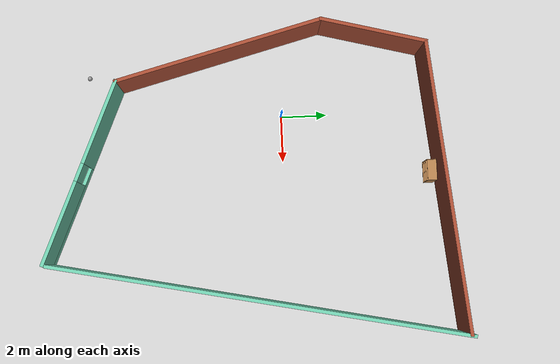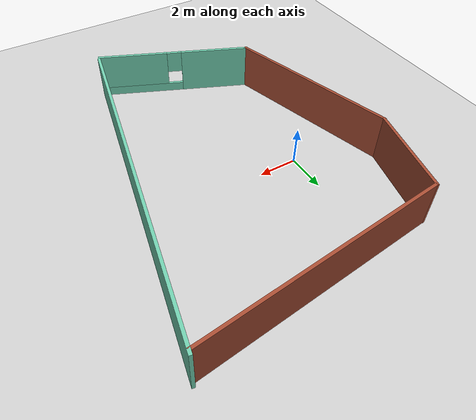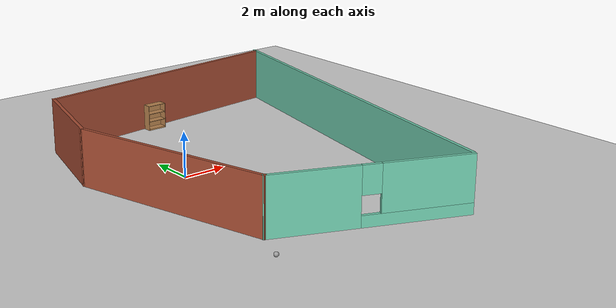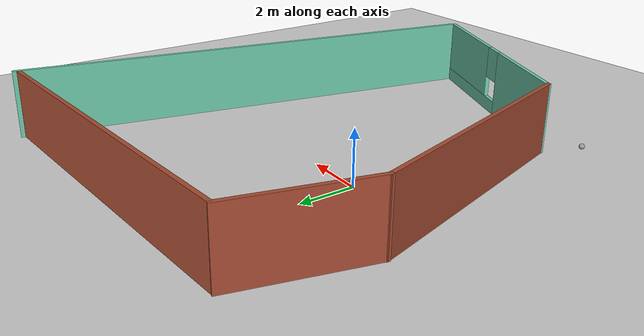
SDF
<sdf version="1.6">
 <world name="default">
  <plugin name="hello" filename="libhello.so"/>
  <light name="sun" type="directional">
   <pose>0 0 10 0 -0 0</pose>
   <diffuse>0.8 0.8 0.8 1</diffuse>
   <specular>0.2 0.2 0.2 1</specular>
   <attenuation>
    <range>1000</range>
    <constant>0.9</constant>
    <linear>0.01</linear>
    <quadratic>0.001</quadratic>
   </attenuation>
   <direction>-0.5 0.1 -0.9</direction>
  </light>
  <model name="ground_plane">
   <static>1</static>
   <link name="link">
    <collision name="collision">
     <geometry><plane><normal>0 0 1</normal><size>100 100</size></plane></geometry>
     <surface><friction><ode><mu>100</mu><mu2>50</mu2></ode></friction></surface>
    </collision>
    <visual name="visual">
     <cast_shadows>0</cast_shadows>
     <geometry><plane><normal>0 0 1</normal><size>100 100</size></plane></geometry>
     <material>
      <script><uri>file://media/materials/scripts/gazebo.material</uri><name>Gazebo/Grey</name></script>
     </material>
    </visual>
   </link>
  </model>
  <gravity>0 0 -9.8</gravity>
  <magnetic_field>6e-06 2.3e-05 -4.2e-05</magnetic_field>
  <atmosphere type="adiabatic"/>
  <physics name="default_physics" default="0" type="ode">
   <max_step_size>0.001</max_step_size>
   <real_time_factor>1</real_time_factor>
   <real_time_update_rate>1000</real_time_update_rate>
  </physics>
  <scene><ambient>0.4 0.4 0.4 1</ambient><background>0.7 0.7 0.7 1</background><shadows>1</shadows></scene>
  <spherical_coordinates>
   <surface_model>EARTH_WGS84</surface_model>
   <latitude_deg>0</latitude_deg>
   <longitude_deg>0</longitude_deg>
   <elevation>0</elevation>
   <heading_deg>0</heading_deg>
  </spherical_coordinates>
  <model name="building">
   <pose>3.01479 -1.33377 0 0 -0 0</pose>
   <link name="Wall_0">
    <collision name="Wall_0_Collision">
     <geometry><box><size>4.68634 0.15 2.5</size></box></geometry>
     <pose>0 0 1.25 0 -0 0</pose>
    </collision>
    <visual name="Wall_0_Visual">
     <pose>0 0 1.25 0 -0 0</pose>
     <geometry><box><size>4.68634 0.15 2.5</size></box></geometry>
     <material>
      <script><uri>file://media/materials/scripts/gazebo.material</uri><name>Gazebo/Bricks</name></script>
      <ambient>1 1 1 1</ambient>
     </material>
     <meta><layer>0</layer></meta>
    </visual>
    <pose>-6.21543 5.31738 0 0 0 -1.82044</pose>
   </link>
   <link name="Wall_1">
    <collision name="Wall_1_Collision">
     <geometry><box><size>9.25 0.15 2.5</size></box></geometry>
     <pose>0 0 1.25 0 -0 0</pose>
    </collision>
    <visual name="Wall_1_Visual">
     <pose>0 0 1.25 0 -0 0</pose>
     <geometry><box><size>9.25 0.15 2.5</size></box></geometry>
     <material>
      <script><uri>file://media/materials/scripts/gazebo.material</uri><name>Gazebo/Bricks</name></script>
      <ambient>1 1 1 1</ambient>
     </material>
     <meta><layer>0</layer></meta>
    </visual>
    <pose>-5.59818 -1.27544 0 0 0 -1.309</pose>
   </link>
   <link name="Wall_2">
    <pose>-0.620057 -7.27949 0 0 0 -0.400505</pose>
    <visual name="Wall_2_Visual_0">
     <pose>-2.3054 0 1.25 0 -0 0</pose>
     <geometry><box><size>3.7934 0.15 2.5</size></box></geometry>
     <material>
      <script><uri>file://media/materials/scripts/gazebo.material</uri><name>Gazebo/Grey</name></script>
      <ambient>0.435294 0.796078 0.67451 1</ambient>
     </material>
     <meta><layer>0</layer></meta>
    </visual>
    <collision name="Wall_2_Collision_0">
     <geometry><box><size>3.7934 0.15 2.5</size></box></geometry>
     <pose>-2.3054 0 1.25 0 -0 0</pose>
    </collision>
    <visual name="Wall_2_Visual_1">
     <pose>1.8967 0 0.25 0 -0 0</pose>
     <geometry><box><size>4.6108 0.15 0.5</size></box></geometry>
     <material>
      <script><uri>file://media/materials/scripts/gazebo.material</uri><name>Gazebo/Grey</name></script>
      <ambient>0.435294 0.796078 0.67451 1</ambient>
     </material>
     <meta><layer>0</layer></meta>
    </visual>
    <collision name="Wall_2_Collision_1">
     <geometry><box><size>4.6108 0.15 0.5</size></box></geometry>
     <pose>1.8967 0 0.25 0 -0 0</pose>
    </collision>
    <visual name="Wall_2_Visual_2">
     <pose>2.2967 0 1.5 0 -0 0</pose>
     <geometry><box><size>3.8108 0.15 2</size></box></geometry>
     <material>
      <script><uri>file://media/materials/scripts/gazebo.material</uri><name>Gazebo/Grey</name></script>
      <ambient>0.435294 0.796078 0.67451 1</ambient>
     </material>
     <meta><layer>0</layer></meta>
    </visual>
    <collision name="Wall_2_Collision_2">
     <geometry><box><size>3.8108 0.15 2</size></box></geometry>
     <pose>2.2967 0 1.5 0 -0 0</pose>
    </collision>
    <visual name="Wall_2_Visual_3">
     <pose>-0.008699 0 1.9 0 -0 0</pose>
     <geometry><box><size>0.8 0.15 1.2</size></box></geometry>
     <material>
      <script><uri>file://media/materials/scripts/gazebo.material</uri><name>Gazebo/Grey</name></script>
      <ambient>0.435294 0.796078 0.67451 1</ambient>
     </material>
     <meta><layer>0</layer></meta>
    </visual>
    <collision name="Wall_2_Collision_3">
     <geometry><box><size>0.8 0.15 1.2</size></box></geometry>
     <pose>-0.008699 0 1.9 0 -0 0</pose>
    </collision>
   </link>
   <link name="Wall_3">
    <collision name="Wall_3_Collision">
     <geometry><box><size>18.1467 0.15 2.5</size></box></geometry>
     <pose>0 0 1.25 0 -0 0</pose>
    </collision>
    <visual name="Wall_3_Visual">
     <pose>0 0 1.25 0 -0 0</pose>
     <geometry><box><size>18.1467 0.15 2.5</size></box></geometry>
     <material>
      <script><uri>file://media/materials/scripts/gazebo.material</uri><name>Gazebo/Grey</name></script>
      <ambient>0.435294 0.796078 0.67451 1</ambient>
     </material>
     <meta><layer>0</layer></meta>
    </visual>
    <pose>5.01491 0.074988 0 0 -0 1.37342</pose>
   </link>
   <link name="Wall_4">
    <collision name="Wall_4_Collision">
     <geometry><box><size>12.4968 0.15 2.5</size></box></geometry>
     <pose>0 0 1.25 0 -0 0</pose>
    </collision>
    <visual name="Wall_4_Visual">
     <pose>0 0 1.25 0 -0 0</pose>
     <geometry><box><size>12.4968 0.15 2.5</size></box></geometry>
     <material>
      <script><uri>file://media/materials/scripts/gazebo.material</uri><name>Gazebo/Bricks</name></script>
      <ambient>1 1 1 1</ambient>
     </material>
     <meta><layer>0</layer></meta>
    </visual>
    <pose>0.567424 8.13697 0 0 0 -3.04071</pose>
   </link>
   <static>1</static>
  </model>
  <model name="bookshelf">
   <static>1</static>
   <link name="link">
    <inertial><mass>1</mass></inertial>
    <collision name="back">
     <pose>0 0.005 0.6 0 -0 0</pose>
     <geometry><box><size>0.9 0.01 1.2</size></box></geometry>
    </collision>
    <visual name="visual1">
     <pose>0 0.005 0.6 0 -0 0</pose>
     <geometry><box><size>0.9 0.01 1.2</size></box></geometry>
     <material>
      <script><uri>file://media/materials/scripts/gazebo.material</uri><name>Gazebo/Wood</name></script>
     </material>
    </visual>
    <collision name="left_side">
     <pose>0.45 -0.195 0.6 0 -0 0</pose>
     <geometry><box><size>0.02 0.4 1.2</size></box></geometry>
    </collision>
    <visual name="visual2">
     <pose>0.45 -0.195 0.6 0 -0 0</pose>
     <geometry><box><size>0.02 0.4 1.2</size></box></geometry>
     <material>
      <script><uri>file://media/materials/scripts/gazebo.material</uri><name>Gazebo/Wood</name></script>
     </material>
    </visual>
    <collision name="right_side">
     <pose>-0.45 -0.195 0.6 0 -0 0</pose>
     <geometry><box><size>0.02 0.4 1.2</size></box></geometry>
    </collision>
    <visual name="visual3">
     <pose>-0.45 -0.195 0.6 0 -0 0</pose>
     <geometry><box><size>0.02 0.4 1.2</size></box></geometry>
     <material>
      <script><uri>file://media/materials/scripts/gazebo.material</uri><name>Gazebo/Wood</name></script>
     </material>
    </visual>
    <collision name="bottom">
     <pose>0 -0.195 0.03 0 -0 0</pose>
     <geometry><box><size>0.88 0.4 0.06</size></box></geometry>
    </collision>
    <visual name="visual4">
     <pose>0 -0.195 0.03 0 -0 0</pose>
     <geometry><box><size>0.88 0.4 0.06</size></box></geometry>
     <material>
      <script><uri>file://media/materials/scripts/gazebo.material</uri><name>Gazebo/Wood</name></script>
     </material>
    </visual>
    <collision name="top">
     <pose>0 -0.195 1.19 0 -0 0</pose>
     <geometry><box><size>0.88 0.4 0.02</size></box></geometry>
    </collision>
    <visual name="visual5">
     <pose>0 -0.195 1.19 0 -0 0</pose>
     <geometry><box><size>0.88 0.4 0.02</size></box></geometry>
     <material>
      <script><uri>file://media/materials/scripts/gazebo.material</uri><name>Gazebo/Wood</name></script>
     </material>
    </visual>
    <collision name="low_shelf">
     <pose>0 -0.195 0.43 0 -0 0</pose>
     <geometry><box><size>0.88 0.4 0.02</size></box></geometry>
    </collision>
    <visual name="visual6">
     <pose>0 -0.195 0.43 0 -0 0</pose>
     <geometry><box><size>0.88 0.4 0.02</size></box></geometry>
     <material>
      <script><uri>file://media/materials/scripts/gazebo.material</uri><name>Gazebo/Wood</name></script>
     </material>
    </visual>
    <collision name="high_shelf">
     <pose>0 -0.195 0.8 0 -0 0</pose>
     <geometry><box><size>0.88 0.4 0.02</size></box></geometry>
    </collision>
    <visual name="visual7">
     <pose>0 -0.195 0.8 0 -0 0</pose>
     <geometry><box><size>0.88 0.4 0.02</size></box></geometry>
     <material>
      <script><uri>file://media/materials/scripts/gazebo.material</uri><name>Gazebo/Wood</name></script>
     </material>
    </visual>
   </link>
   <pose>2.71764 6.57876 0 0 -0 0</pose>
  </model>
  <model name="my_ball">
   <link name="link_0">
    <inertial>
     <mass>1</mass>
     <inertia><ixx>0.1</ixx><ixy>0</ixy><ixz>0</ixz><iyy>0.1</iyy><iyz>0</iyz><izz>0.1</izz></inertia>
    </inertial>
    <visual name="visual">
     <geometry><sphere><radius>0.1</radius></sphere></geometry>
     <material>
      <lighting>1</lighting>
      <script><uri>file://media/materials/scripts/gazebo.material</uri><name>Gazebo/Grey</name></script>
      <ambient>1 1 1 1</ambient>
      <diffuse>1 1 1 1</diffuse>
      <specular>1 1 1 1</specular>
      <emissive>1 1 1 1</emissive>
      <shader type="vertex"><normal_map>__default__</normal_map></shader>
     </material>
    </visual>
    <collision name="collision">
     <geometry><sphere><radius>0.1</radius></sphere></geometry>
     <surface>
      <friction>
       <ode><mu>1</mu><mu2>1</mu2><fdir1>0 0 0</fdir1><slip1>0</slip1><slip2>0</slip2></ode>
       <torsional>
        <coefficient>1</coefficient>
        <patch_radius>0</patch_radius>
        <surface_radius>0</surface_radius>
        <use_patch_radius>1</use_patch_radius>
        <ode><slip>0</slip></ode>
       </torsional>
      </friction>
      <bounce><restitution_coefficient>0</restitution_coefficient><threshold>1e+06</threshold></bounce>
      <contact>
       <collide_without_contact>0</collide_without_contact>
       <collide_without_contact_bitmask>1</collide_without_contact_bitmask>
       <collide_bitmask>1</collide_bitmask>
       <ode>
        <soft_cfm>0</soft_cfm>
        <soft_erp>0.2</soft_erp>
        <kp>1e+13</kp>
        <kd>1</kd>
        <max_vel>0.01</max_vel>
        <min_depth>0</min_depth>
       </ode>
       <bullet>
        <split_impulse>1</split_impulse>
        <split_impulse_penetration_threshold>-0.01</split_impulse_penetration_threshold>
        <soft_cfm>0</soft_cfm>
        <soft_erp>0.2</soft_erp>
        <kp>1e+13</kp>
        <kd>1</kd>
       </bullet>
      </contact>
     </surface>
    </collision>
   </link>
   <static>0</static>
   <pose>-2.03775 -8.44748 0.1 0 -0 0</pose>
  </model>
  <plugin filename="libcollision_map_creator.so" name="collision_map_creator"/>
 </world>
</sdf>
